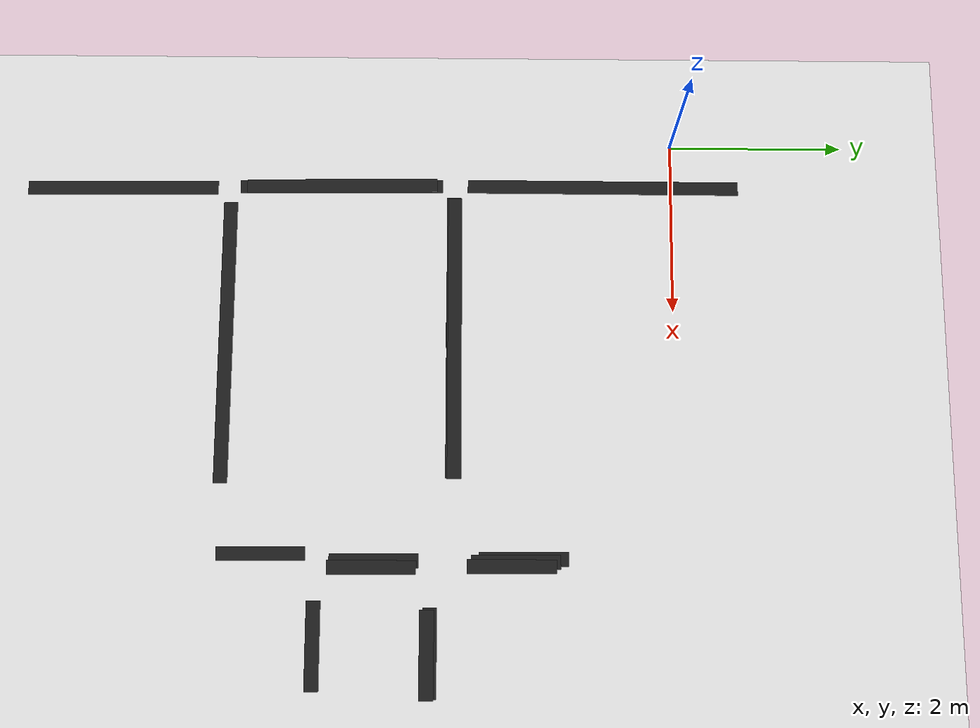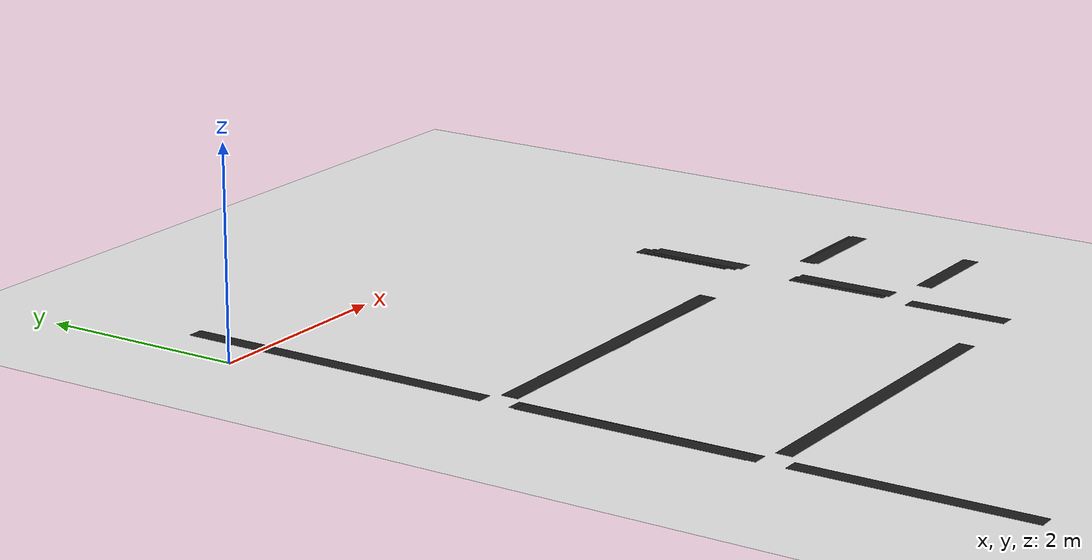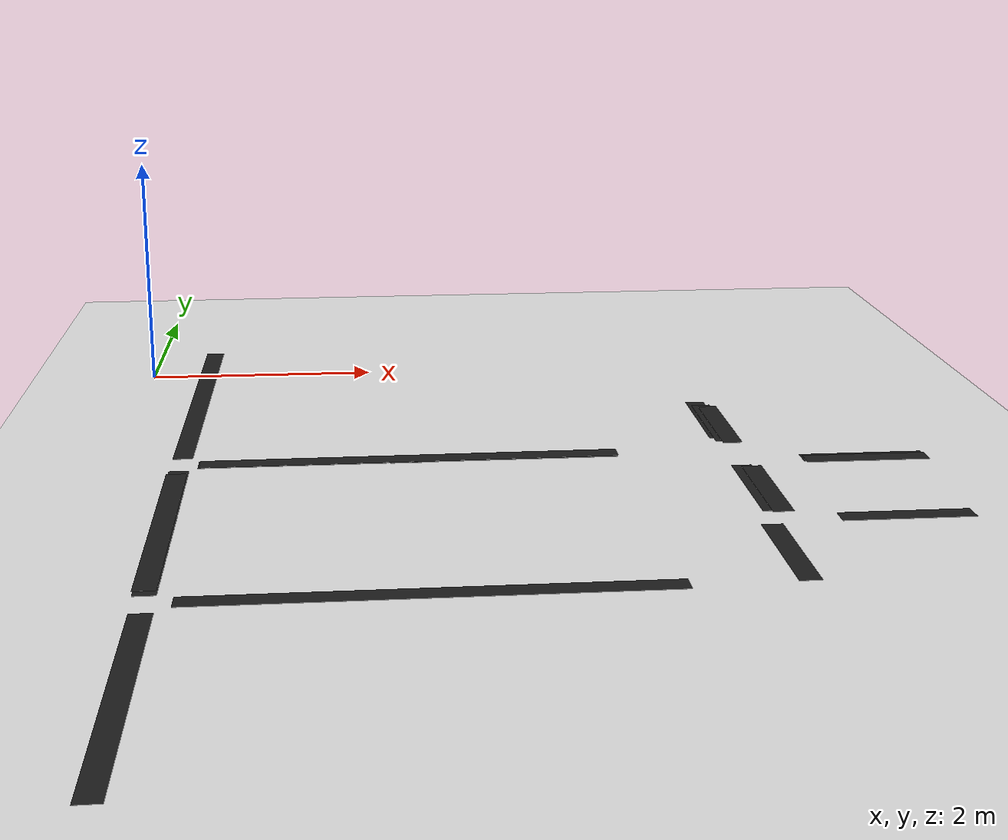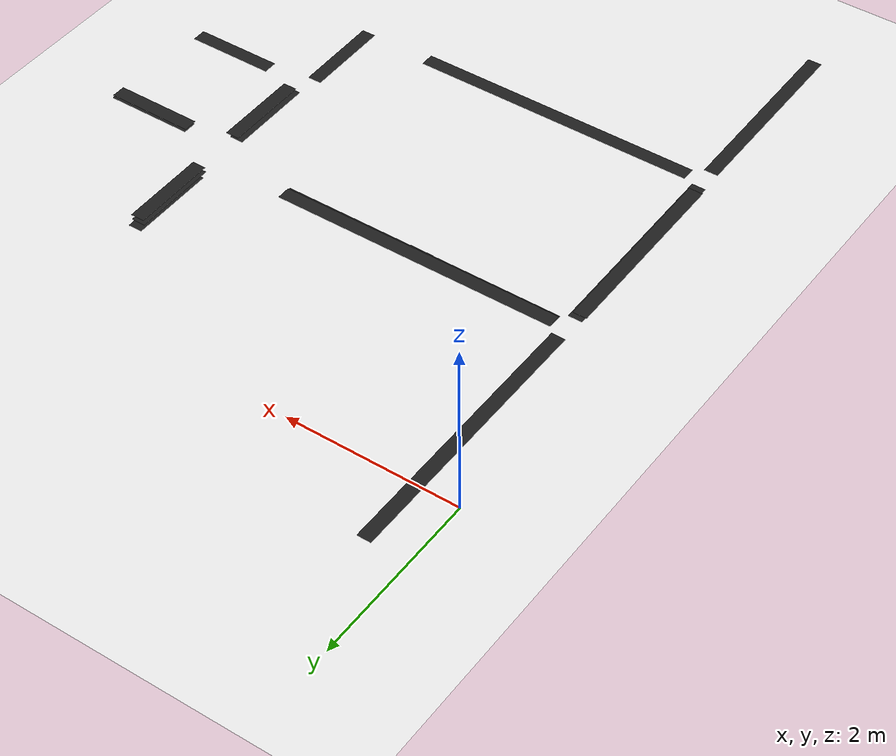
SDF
<sdf version="1.7">
 <world name="default">
  <model name="ground_plane">
   <static>1</static>
   <link name="link">
    <collision name="collision">
     <geometry><plane><normal>0 0 1</normal><size>100 100</size></plane></geometry>
     <surface>
      <contact><collide_bitmask>65535</collide_bitmask></contact>
      <friction><ode><mu>100</mu><mu2>50</mu2></ode></friction>
     </surface>
    </collision>
    <visual name="visual">
     <cast_shadows>0</cast_shadows>
     <geometry><plane><normal>0 0 1</normal><size>100 100</size></plane></geometry>
     <material>
      <script><uri>file://media/materials/scripts/gazebo.material</uri><name>Gazebo/White</name></script>
     </material>
    </visual>
   </link>
  </model>
  <model name="unit_box_clone_0_clone_clone_0_clone_clone">
   <link name="link">
    <inertial>
     <mass>1</mass>
     <inertia>
      <ixx>0.166667</ixx>
      <ixy>0</ixy>
      <ixz>0</ixz>
      <iyy>0.166667</iyy>
      <iyz>0</iyz>
      <izz>0.166667</izz>
     </inertia>
    </inertial>
    <visual name="visual">
     <geometry><box><size>0.448701 0.160776 0.000937</size></box></geometry>
     <material>
      <script><name>Gazebo/Black</name><uri>file://media/materials/scripts/gazebo.material</uri></script>
      <shader type="pixel"><normal_map>__default__</normal_map></shader>
      <ambient>0 0 0 1</ambient>
      <diffuse>0 0 0 1</diffuse>
      <specular>0.1 0.1 0.1 1</specular>
      <emissive>0 0 0 1</emissive>
     </material>
    </visual>
    <collision name="collision">
     <geometry><box><size>0.448701 0.160776 0.000937</size></box></geometry>
     <surface>
      <friction>
       <ode><mu>1</mu><mu2>1</mu2><fdir1>0 0 0</fdir1><slip1>0</slip1><slip2>0</slip2></ode>
       <torsional>
        <coefficient>1</coefficient>
        <patch_radius>0</patch_radius>
        <surface_radius>0</surface_radius>
        <use_patch_radius>1</use_patch_radius>
        <ode><slip>0</slip></ode>
       </torsional>
      </friction>
      <bounce><restitution_coefficient>0</restitution_coefficient><threshold>1e+06</threshold></bounce>
      <contact>
       <collide_without_contact>0</collide_without_contact>
       <collide_without_contact_bitmask>1</collide_without_contact_bitmask>
       <collide_bitmask>1</collide_bitmask>
       <ode>
        <soft_cfm>0</soft_cfm>
        <soft_erp>0.2</soft_erp>
        <kp>1e+13</kp>
        <kd>1</kd>
        <max_vel>0.01</max_vel>
        <min_depth>0</min_depth>
       </ode>
       <bullet>
        <split_impulse>1</split_impulse>
        <split_impulse_penetration_threshold>-0.01</split_impulse_penetration_threshold>
        <soft_cfm>0</soft_cfm>
        <soft_erp>0.2</soft_erp>
        <kp>1e+13</kp>
        <kd>1</kd>
       </bullet>
      </contact>
     </surface>
    </collision>
   </link>
   <static>0</static>
   <pose>0.50938 -3.87941 0.000454 -1e-06 -2.8e-05 -1.5617</pose>
  </model>
  <model name="unit_box_clone_0_clone_clone_0_clone_clone_clone">
   <link name="link">
    <inertial>
     <mass>1</mass>
     <inertia>
      <ixx>0.166667</ixx>
      <ixy>0</ixy>
      <ixz>0</ixz>
      <iyy>0.166667</iyy>
      <iyz>0</iyz>
      <izz>0.166667</izz>
     </inertia>
    </inertial>
    <visual name="visual">
     <geometry><box><size>1 0.160776 0.000937</size></box></geometry>
     <material>
      <script><name>Gazebo/Black</name><uri>file://media/materials/scripts/gazebo.material</uri></script>
      <shader type="pixel"><normal_map>__default__</normal_map></shader>
      <ambient>0 0 0 1</ambient>
      <diffuse>0 0 0 1</diffuse>
      <specular>0.1 0.1 0.1 1</specular>
      <emissive>0 0 0 1</emissive>
     </material>
    </visual>
    <collision name="collision">
     <geometry><box><size>1 0.160776 0.000937</size></box></geometry>
     <surface>
      <friction>
       <ode><mu>1</mu><mu2>1</mu2><fdir1>0 0 0</fdir1><slip1>0</slip1><slip2>0</slip2></ode>
       <torsional>
        <coefficient>1</coefficient>
        <patch_radius>0</patch_radius>
        <surface_radius>0</surface_radius>
        <use_patch_radius>1</use_patch_radius>
        <ode><slip>0</slip></ode>
       </torsional>
      </friction>
      <bounce><restitution_coefficient>0</restitution_coefficient><threshold>1e+06</threshold></bounce>
      <contact>
       <collide_without_contact>0</collide_without_contact>
       <collide_without_contact_bitmask>1</collide_without_contact_bitmask>
       <collide_bitmask>1</collide_bitmask>
       <ode>
        <soft_cfm>0</soft_cfm>
        <soft_erp>0.2</soft_erp>
        <kp>1e+13</kp>
        <kd>1</kd>
        <max_vel>0.01</max_vel>
        <min_depth>0</min_depth>
       </ode>
       <bullet>
        <split_impulse>1</split_impulse>
        <split_impulse_penetration_threshold>-0.01</split_impulse_penetration_threshold>
        <soft_cfm>0</soft_cfm>
        <soft_erp>0.2</soft_erp>
        <kp>1e+13</kp>
        <kd>1</kd>
       </bullet>
      </contact>
     </surface>
    </collision>
   </link>
   <static>0</static>
   <pose>4.8423 -4.65666 0.000469 0 -0 -1.56222</pose>
  </model>
  <model name="unit_box_clone_0_clone_clone_0_clone_clone_0">
   <link name="link">
    <inertial>
     <mass>1</mass>
     <inertia>
      <ixx>0.166667</ixx>
      <ixy>0</ixy>
      <ixz>0</ixz>
      <iyy>0.166667</iyy>
      <iyz>0</iyz>
      <izz>0.166667</izz>
     </inertia>
    </inertial>
    <visual name="visual">
     <geometry><box><size>1 0.160776 0.000937</size></box></geometry>
     <material>
      <script><name>Gazebo/Black</name><uri>file://media/materials/scripts/gazebo.material</uri></script>
      <shader type="pixel"><normal_map>__default__</normal_map></shader>
      <ambient>0 0 0 1</ambient>
      <diffuse>0 0 0 1</diffuse>
      <specular>0.1 0.1 0.1 1</specular>
      <emissive>0 0 0 1</emissive>
     </material>
    </visual>
    <collision name="collision">
     <geometry><box><size>1 0.160776 0.000937</size></box></geometry>
     <surface>
      <friction>
       <ode><mu>1</mu><mu2>1</mu2><fdir1>0 0 0</fdir1><slip1>0</slip1><slip2>0</slip2></ode>
       <torsional>
        <coefficient>1</coefficient>
        <patch_radius>0</patch_radius>
        <surface_radius>0</surface_radius>
        <use_patch_radius>1</use_patch_radius>
        <ode><slip>0</slip></ode>
       </torsional>
      </friction>
      <bounce><restitution_coefficient>0</restitution_coefficient><threshold>1e+06</threshold></bounce>
      <contact>
       <collide_without_contact>0</collide_without_contact>
       <collide_without_contact_bitmask>1</collide_without_contact_bitmask>
       <collide_bitmask>1</collide_bitmask>
       <ode>
        <soft_cfm>0</soft_cfm>
        <soft_erp>0.2</soft_erp>
        <kp>1e+13</kp>
        <kd>1</kd>
        <max_vel>0.01</max_vel>
        <min_depth>0</min_depth>
       </ode>
       <bullet>
        <split_impulse>1</split_impulse>
        <split_impulse_penetration_threshold>-0.01</split_impulse_penetration_threshold>
        <soft_cfm>0</soft_cfm>
        <soft_erp>0.2</soft_erp>
        <kp>1e+13</kp>
        <kd>1</kd>
       </bullet>
      </contact>
     </surface>
    </collision>
   </link>
   <static>0</static>
   <pose>5.95023 -2.79642 0.001252 5e-06 -4.2e-05 -0.001228</pose>
  </model>
  <model name="unit_box_clone_0_clone_clone_0_clone_clone_clone_0">
   <link name="link">
    <inertial>
     <mass>1</mass>
     <inertia>
      <ixx>0.166667</ixx>
      <ixy>0</ixy>
      <ixz>0</ixz>
      <iyy>0.166667</iyy>
      <iyz>0</iyz>
      <izz>0.166667</izz>
     </inertia>
    </inertial>
    <visual name="visual">
     <geometry><box><size>1 0.160776 0.000937</size></box></geometry>
     <material>
      <script><name>Gazebo/Black</name><uri>file://media/materials/scripts/gazebo.material</uri></script>
      <shader type="pixel"><normal_map>__default__</normal_map></shader>
      <ambient>0 0 0 1</ambient>
      <diffuse>0 0 0 1</diffuse>
      <specular>0.1 0.1 0.1 1</specular>
      <emissive>0 0 0 1</emissive>
     </material>
    </visual>
    <collision name="collision">
     <geometry><box><size>1 0.160776 0.000937</size></box></geometry>
     <surface>
      <friction>
       <ode><mu>1</mu><mu2>1</mu2><fdir1>0 0 0</fdir1><slip1>0</slip1><slip2>0</slip2></ode>
       <torsional>
        <coefficient>1</coefficient>
        <patch_radius>0</patch_radius>
        <surface_radius>0</surface_radius>
        <use_patch_radius>1</use_patch_radius>
        <ode><slip>0</slip></ode>
       </torsional>
      </friction>
      <bounce><restitution_coefficient>0</restitution_coefficient><threshold>1e+06</threshold></bounce>
      <contact>
       <collide_without_contact>0</collide_without_contact>
       <collide_without_contact_bitmask>1</collide_without_contact_bitmask>
       <collide_bitmask>1</collide_bitmask>
       <ode>
        <soft_cfm>0</soft_cfm>
        <soft_erp>0.2</soft_erp>
        <kp>1e+13</kp>
        <kd>1</kd>
        <max_vel>0.01</max_vel>
        <min_depth>0</min_depth>
       </ode>
       <bullet>
        <split_impulse>1</split_impulse>
        <split_impulse_penetration_threshold>-0.01</split_impulse_penetration_threshold>
        <soft_cfm>0</soft_cfm>
        <soft_erp>0.2</soft_erp>
        <kp>1e+13</kp>
        <kd>1</kd>
       </bullet>
      </contact>
     </surface>
    </collision>
   </link>
   <static>0</static>
   <pose>4.88078 -1.71752 0.000468 -0 -0 -1.56689</pose>
  </model>
  <model name="unit_box_clone_0_clone_clone_0_clone_clone_0_clone">
   <link name="link">
    <inertial>
     <mass>1</mass>
     <inertia>
      <ixx>0.166667</ixx>
      <ixy>0</ixy>
      <ixz>0</ixz>
      <iyy>0.166667</iyy>
      <iyz>0</iyz>
      <izz>0.166667</izz>
     </inertia>
    </inertial>
    <visual name="visual">
     <geometry><box><size>1 0.160776 0.000937</size></box></geometry>
     <material>
      <script><name>Gazebo/Black</name><uri>file://media/materials/scripts/gazebo.material</uri></script>
      <shader type="pixel"><normal_map>__default__</normal_map></shader>
      <ambient>0 0 0 1</ambient>
      <diffuse>0 0 0 1</diffuse>
      <specular>0.1 0.1 0.1 1</specular>
      <emissive>0 0 0 1</emissive>
     </material>
    </visual>
    <collision name="collision">
     <geometry><box><size>1 0.160776 0.000937</size></box></geometry>
     <surface>
      <friction>
       <ode><mu>1</mu><mu2>1</mu2><fdir1>0 0 0</fdir1><slip1>0</slip1><slip2>0</slip2></ode>
       <torsional>
        <coefficient>1</coefficient>
        <patch_radius>0</patch_radius>
        <surface_radius>0</surface_radius>
        <use_patch_radius>1</use_patch_radius>
        <ode><slip>0</slip></ode>
       </torsional>
      </friction>
      <bounce><restitution_coefficient>0</restitution_coefficient><threshold>1e+06</threshold></bounce>
      <contact>
       <collide_without_contact>0</collide_without_contact>
       <collide_without_contact_bitmask>1</collide_without_contact_bitmask>
       <collide_bitmask>1</collide_bitmask>
       <ode>
        <soft_cfm>0</soft_cfm>
        <soft_erp>0.2</soft_erp>
        <kp>1e+13</kp>
        <kd>1</kd>
        <max_vel>0.01</max_vel>
        <min_depth>0</min_depth>
       </ode>
       <bullet>
        <split_impulse>1</split_impulse>
        <split_impulse_penetration_threshold>-0.01</split_impulse_penetration_threshold>
        <soft_cfm>0</soft_cfm>
        <soft_erp>0.2</soft_erp>
        <kp>1e+13</kp>
        <kd>1</kd>
       </bullet>
      </contact>
     </surface>
    </collision>
   </link>
   <static>0</static>
   <pose>5.8624 -4.05427 0.000464 -0 -1e-05 0.000298</pose>
  </model>
  <model name="unit_box_clone_0_clone_clone_0_clone_clone_clone_2_clone_2">
   <link name="link">
    <inertial>
     <mass>1</mass>
     <inertia>
      <ixx>0.166667</ixx>
      <ixy>0</ixy>
      <ixz>0</ixz>
      <iyy>0.166667</iyy>
      <iyz>0</iyz>
      <izz>0.166667</izz>
     </inertia>
    </inertial>
    <visual name="visual">
     <geometry><box><size>1 0.160776 0.000937</size></box></geometry>
     <material>
      <script><name>Gazebo/Black</name><uri>file://media/materials/scripts/gazebo.material</uri></script>
      <shader type="pixel"><normal_map>__default__</normal_map></shader>
      <ambient>0 0 0 1</ambient>
      <diffuse>0 0 0 1</diffuse>
      <specular>0.1 0.1 0.1 1</specular>
      <emissive>0 0 0 1</emissive>
     </material>
    </visual>
    <collision name="collision">
     <geometry><box><size>1 0.160776 0.000937</size></box></geometry>
     <surface>
      <friction>
       <ode><mu>1</mu><mu2>1</mu2><fdir1>0 0 0</fdir1><slip1>0</slip1><slip2>0</slip2></ode>
       <torsional>
        <coefficient>1</coefficient>
        <patch_radius>0</patch_radius>
        <surface_radius>0</surface_radius>
        <use_patch_radius>1</use_patch_radius>
        <ode><slip>0</slip></ode>
       </torsional>
      </friction>
      <bounce><restitution_coefficient>0</restitution_coefficient><threshold>1e+06</threshold></bounce>
      <contact>
       <collide_without_contact>0</collide_without_contact>
       <collide_without_contact_bitmask>1</collide_without_contact_bitmask>
       <collide_bitmask>1</collide_bitmask>
       <ode>
        <soft_cfm>0</soft_cfm>
        <soft_erp>0.2</soft_erp>
        <kp>1e+13</kp>
        <kd>1</kd>
        <max_vel>0.01</max_vel>
        <min_depth>0</min_depth>
       </ode>
       <bullet>
        <split_impulse>1</split_impulse>
        <split_impulse_penetration_threshold>-0.01</split_impulse_penetration_threshold>
        <soft_cfm>0</soft_cfm>
        <soft_erp>0.2</soft_erp>
        <kp>1e+13</kp>
        <kd>1</kd>
       </bullet>
      </contact>
     </surface>
    </collision>
   </link>
   <static>0</static>
   <pose>4.91285 -3.39493 0.000455 -2e-06 -1.1e-05 -1.56388</pose>
  </model>
  <model name="unit_box_clone_0_clone_clone_0_clone_clone_clone_2_clone_3">
   <link name="link">
    <inertial>
     <mass>1</mass>
     <inertia>
      <ixx>0.166667</ixx>
      <ixy>0</ixy>
      <ixz>0</ixz>
      <iyy>0.166667</iyy>
      <iyz>0</iyz>
      <izz>0.166667</izz>
     </inertia>
    </inertial>
    <visual name="visual">
     <geometry><box><size>1 0.160776 0.000937</size></box></geometry>
     <material>
      <script><name>Gazebo/Black</name><uri>file://media/materials/scripts/gazebo.material</uri></script>
      <shader type="pixel"><normal_map>__default__</normal_map></shader>
      <ambient>0 0 0 1</ambient>
      <diffuse>0 0 0 1</diffuse>
      <specular>0.1 0.1 0.1 1</specular>
      <emissive>0 0 0 1</emissive>
     </material>
    </visual>
    <collision name="collision">
     <geometry><box><size>1 0.160776 0.000937</size></box></geometry>
     <surface>
      <friction>
       <ode><mu>1</mu><mu2>1</mu2><fdir1>0 0 0</fdir1><slip1>0</slip1><slip2>0</slip2></ode>
       <torsional>
        <coefficient>1</coefficient>
        <patch_radius>0</patch_radius>
        <surface_radius>0</surface_radius>
        <use_patch_radius>1</use_patch_radius>
        <ode><slip>0</slip></ode>
       </torsional>
      </friction>
      <bounce><restitution_coefficient>0</restitution_coefficient><threshold>1e+06</threshold></bounce>
      <contact>
       <collide_without_contact>0</collide_without_contact>
       <collide_without_contact_bitmask>1</collide_without_contact_bitmask>
       <collide_bitmask>1</collide_bitmask>
       <ode>
        <soft_cfm>0</soft_cfm>
        <soft_erp>0.2</soft_erp>
        <kp>1e+13</kp>
        <kd>1</kd>
        <max_vel>0.01</max_vel>
        <min_depth>0</min_depth>
       </ode>
       <bullet>
        <split_impulse>1</split_impulse>
        <split_impulse_penetration_threshold>-0.01</split_impulse_penetration_threshold>
        <soft_cfm>0</soft_cfm>
        <soft_erp>0.2</soft_erp>
        <kp>1e+13</kp>
        <kd>1</kd>
       </bullet>
      </contact>
     </surface>
    </collision>
   </link>
   <static>0</static>
   <pose>4.98538 -3.42058 0.001398 -0.00024 -2e-05 -1.56689</pose>
  </model>
  <model name="unit_box_clone_0_clone_clone_0_clone_clone_clone_0_clone_0">
   <link name="link">
    <inertial>
     <mass>1</mass>
     <inertia>
      <ixx>0.166667</ixx>
      <ixy>0</ixy>
      <ixz>0</ixz>
      <iyy>0.166667</iyy>
      <iyz>0</iyz>
      <izz>0.166667</izz>
     </inertia>
    </inertial>
    <visual name="visual">
     <geometry><box><size>1 0.160776 0.000937</size></box></geometry>
     <material>
      <script><name>Gazebo/Black</name><uri>file://media/materials/scripts/gazebo.material</uri></script>
      <shader type="pixel"><normal_map>__default__</normal_map></shader>
      <ambient>0 0 0 1</ambient>
      <diffuse>0 0 0 1</diffuse>
      <specular>0.1 0.1 0.1 1</specular>
      <emissive>0 0 0 1</emissive>
     </material>
    </visual>
    <collision name="collision">
     <geometry><box><size>1 0.160776 0.000937</size></box></geometry>
     <surface>
      <friction>
       <ode><mu>1</mu><mu2>1</mu2><fdir1>0 0 0</fdir1><slip1>0</slip1><slip2>0</slip2></ode>
       <torsional>
        <coefficient>1</coefficient>
        <patch_radius>0</patch_radius>
        <surface_radius>0</surface_radius>
        <use_patch_radius>1</use_patch_radius>
        <ode><slip>0</slip></ode>
       </torsional>
      </friction>
      <bounce><restitution_coefficient>0</restitution_coefficient><threshold>1e+06</threshold></bounce>
      <contact>
       <collide_without_contact>0</collide_without_contact>
       <collide_without_contact_bitmask>1</collide_without_contact_bitmask>
       <collide_bitmask>1</collide_bitmask>
       <ode>
        <soft_cfm>0</soft_cfm>
        <soft_erp>0.2</soft_erp>
        <kp>1e+13</kp>
        <kd>1</kd>
        <max_vel>0.01</max_vel>
        <min_depth>0</min_depth>
       </ode>
       <bullet>
        <split_impulse>1</split_impulse>
        <split_impulse_penetration_threshold>-0.01</split_impulse_penetration_threshold>
        <soft_cfm>0</soft_cfm>
        <soft_erp>0.2</soft_erp>
        <kp>1e+13</kp>
        <kd>1</kd>
       </bullet>
      </contact>
     </surface>
    </collision>
   </link>
   <static>0</static>
   <pose>4.91453 -1.80693 0.001371 -8e-06 -8.6e-05 -1.5648</pose>
  </model>
  <model name="unit_box_clone_0_clone_clone_0_clone_clone_clone_0_clone_1">
   <link name="link">
    <inertial>
     <mass>1</mass>
     <inertia>
      <ixx>0.166667</ixx>
      <ixy>0</ixy>
      <ixz>0</ixz>
      <iyy>0.166667</iyy>
      <iyz>0</iyz>
      <izz>0.166667</izz>
     </inertia>
    </inertial>
    <visual name="visual">
     <geometry><box><size>1 0.160776 0.000937</size></box></geometry>
     <material>
      <script><name>Gazebo/Black</name><uri>file://media/materials/scripts/gazebo.material</uri></script>
      <shader type="pixel"><normal_map>__default__</normal_map></shader>
      <ambient>0 0 0 1</ambient>
      <diffuse>0 0 0 1</diffuse>
      <specular>0.1 0.1 0.1 1</specular>
      <emissive>0 0 0 1</emissive>
     </material>
    </visual>
    <collision name="collision">
     <geometry><box><size>1 0.160776 0.000937</size></box></geometry>
     <surface>
      <friction>
       <ode><mu>1</mu><mu2>1</mu2><fdir1>0 0 0</fdir1><slip1>0</slip1><slip2>0</slip2></ode>
       <torsional>
        <coefficient>1</coefficient>
        <patch_radius>0</patch_radius>
        <surface_radius>0</surface_radius>
        <use_patch_radius>1</use_patch_radius>
        <ode><slip>0</slip></ode>
       </torsional>
      </friction>
      <bounce><restitution_coefficient>0</restitution_coefficient><threshold>1e+06</threshold></bounce>
      <contact>
       <collide_without_contact>0</collide_without_contact>
       <collide_without_contact_bitmask>1</collide_without_contact_bitmask>
       <collide_bitmask>1</collide_bitmask>
       <ode>
        <soft_cfm>0</soft_cfm>
        <soft_erp>0.2</soft_erp>
        <kp>1e+13</kp>
        <kd>1</kd>
        <max_vel>0.01</max_vel>
        <min_depth>0</min_depth>
       </ode>
       <bullet>
        <split_impulse>1</split_impulse>
        <split_impulse_penetration_threshold>-0.01</split_impulse_penetration_threshold>
        <soft_cfm>0</soft_cfm>
        <soft_erp>0.2</soft_erp>
        <kp>1e+13</kp>
        <kd>1</kd>
       </bullet>
      </contact>
     </surface>
    </collision>
   </link>
   <static>0</static>
   <pose>4.96504 -1.85196 0.00229 -1.5e-05 -4.4e-05 -1.56493</pose>
  </model>
  <model name="unit_box_clone_0_clone_clone_0_clone_clone_0_clone_1">
   <link name="link">
    <inertial>
     <mass>1</mass>
     <inertia>
      <ixx>0.166667</ixx>
      <ixy>0</ixy>
      <ixz>0</ixz>
      <iyy>0.166667</iyy>
      <iyz>0</iyz>
      <izz>0.166667</izz>
     </inertia>
    </inertial>
    <visual name="visual">
     <geometry><box><size>1 0.160776 0.000937</size></box></geometry>
     <material>
      <script><name>Gazebo/Black</name><uri>file://media/materials/scripts/gazebo.material</uri></script>
      <shader type="pixel"><normal_map>__default__</normal_map></shader>
      <ambient>0 0 0 1</ambient>
      <diffuse>0 0 0 1</diffuse>
      <specular>0.1 0.1 0.1 1</specular>
      <emissive>0 0 0 1</emissive>
     </material>
    </visual>
    <collision name="collision">
     <geometry><box><size>1 0.160776 0.000937</size></box></geometry>
     <surface>
      <friction>
       <ode><mu>1</mu><mu2>1</mu2><fdir1>0 0 0</fdir1><slip1>0</slip1><slip2>0</slip2></ode>
       <torsional>
        <coefficient>1</coefficient>
        <patch_radius>0</patch_radius>
        <surface_radius>0</surface_radius>
        <use_patch_radius>1</use_patch_radius>
        <ode><slip>0</slip></ode>
       </torsional>
      </friction>
      <bounce><restitution_coefficient>0</restitution_coefficient><threshold>1e+06</threshold></bounce>
      <contact>
       <collide_without_contact>0</collide_without_contact>
       <collide_without_contact_bitmask>1</collide_without_contact_bitmask>
       <collide_bitmask>1</collide_bitmask>
       <ode>
        <soft_cfm>0</soft_cfm>
        <soft_erp>0.2</soft_erp>
        <kp>1e+13</kp>
        <kd>1</kd>
        <max_vel>0.01</max_vel>
        <min_depth>0</min_depth>
       </ode>
       <bullet>
        <split_impulse>1</split_impulse>
        <split_impulse_penetration_threshold>-0.01</split_impulse_penetration_threshold>
        <soft_cfm>0</soft_cfm>
        <soft_erp>0.2</soft_erp>
        <kp>1e+13</kp>
        <kd>1</kd>
       </bullet>
      </contact>
     </surface>
    </collision>
   </link>
   <static>0</static>
   <pose>5.93137 -2.76298 0.000402 1e-06 0.000134 0.000213</pose>
  </model>
  <model name="unit_box_clone_0_clone_clone_clone_clone_clone_clone_clone_0_clone_clone_0">
   <link name="link">
    <inertial>
     <mass>1</mass>
     <inertia>
      <ixx>0.166667</ixx>
      <ixy>0</ixy>
      <ixz>0</ixz>
      <iyy>0.166667</iyy>
      <iyz>0</iyz>
      <izz>0.166667</izz>
     </inertia>
    </inertial>
    <visual name="visual">
     <geometry><box><size>3.16167 0.161571 0.000937</size></box></geometry>
     <material>
      <script><name>Gazebo/Black</name><uri>file://media/materials/scripts/gazebo.material</uri></script>
      <shader type="pixel"><normal_map>__default__</normal_map></shader>
      <ambient>0 0 0 1</ambient>
      <diffuse>0 0 0 1</diffuse>
      <specular>0.1 0.1 0.1 1</specular>
      <emissive>0 0 0 1</emissive>
     </material>
    </visual>
    <collision name="collision">
     <geometry><box><size>3.16167 0.161571 0.000937</size></box></geometry>
     <surface>
      <friction>
       <ode><mu>1</mu><mu2>1</mu2><fdir1>0 0 0</fdir1><slip1>0</slip1><slip2>0</slip2></ode>
       <torsional>
        <coefficient>1</coefficient>
        <patch_radius>0</patch_radius>
        <surface_radius>0</surface_radius>
        <use_patch_radius>1</use_patch_radius>
        <ode><slip>0</slip></ode>
       </torsional>
      </friction>
      <bounce><restitution_coefficient>0</restitution_coefficient><threshold>1e+06</threshold></bounce>
      <contact>
       <collide_without_contact>0</collide_without_contact>
       <collide_without_contact_bitmask>1</collide_without_contact_bitmask>
       <collide_bitmask>1</collide_bitmask>
       <ode>
        <soft_cfm>0</soft_cfm>
        <soft_erp>0.2</soft_erp>
        <kp>1e+13</kp>
        <kd>1</kd>
        <max_vel>0.01</max_vel>
        <min_depth>0</min_depth>
       </ode>
       <bullet>
        <split_impulse>1</split_impulse>
        <split_impulse_penetration_threshold>-0.01</split_impulse_penetration_threshold>
        <soft_cfm>0</soft_cfm>
        <soft_erp>0.2</soft_erp>
        <kp>1e+13</kp>
        <kd>1</kd>
       </bullet>
      </contact>
     </surface>
    </collision>
   </link>
   <static>0</static>
   <pose>0.497635 -0.788003 -4.1e-05 -1.1e-05 -0.000323 -1.57206</pose>
  </model>
  <model name="unit_box_clone_0_clone_clone_0_clone_clone_4">
   <link name="link">
    <inertial>
     <mass>1</mass>
     <inertia>
      <ixx>0.166667</ixx>
      <ixy>0</ixy>
      <ixz>0</ixz>
      <iyy>0.166667</iyy>
      <iyz>0</iyz>
      <izz>0.166667</izz>
     </inertia>
    </inertial>
    <visual name="visual">
     <geometry><box><size>0.299882 0.160776 0.000937</size></box></geometry>
     <material>
      <script><name>Gazebo/Black</name><uri>file://media/materials/scripts/gazebo.material</uri></script>
      <shader type="pixel"><normal_map>__default__</normal_map></shader>
      <ambient>0 0 0 1</ambient>
      <diffuse>0 0 0 1</diffuse>
      <specular>0.1 0.1 0.1 1</specular>
      <emissive>0 0 0 1</emissive>
     </material>
    </visual>
    <collision name="collision">
     <geometry><box><size>0.299882 0.160776 0.000937</size></box></geometry>
     <surface>
      <friction>
       <ode><mu>1</mu><mu2>1</mu2><fdir1>0 0 0</fdir1><slip1>0</slip1><slip2>0</slip2></ode>
       <torsional>
        <coefficient>1</coefficient>
        <patch_radius>0</patch_radius>
        <surface_radius>0</surface_radius>
        <use_patch_radius>1</use_patch_radius>
        <ode><slip>0</slip></ode>
       </torsional>
      </friction>
      <bounce><restitution_coefficient>0</restitution_coefficient><threshold>1e+06</threshold></bounce>
      <contact>
       <collide_without_contact>0</collide_without_contact>
       <collide_without_contact_bitmask>1</collide_without_contact_bitmask>
       <collide_bitmask>1</collide_bitmask>
       <ode>
        <soft_cfm>0</soft_cfm>
        <soft_erp>0.2</soft_erp>
        <kp>1e+13</kp>
        <kd>1</kd>
        <max_vel>0.01</max_vel>
        <min_depth>0</min_depth>
       </ode>
       <bullet>
        <split_impulse>1</split_impulse>
        <split_impulse_penetration_threshold>-0.01</split_impulse_penetration_threshold>
        <soft_cfm>0</soft_cfm>
        <soft_erp>0.2</soft_erp>
        <kp>1e+13</kp>
        <kd>1</kd>
       </bullet>
      </contact>
     </surface>
    </collision>
   </link>
   <static>0</static>
   <pose>2.29995 -2.52991 0.000356 -2e-06 -0.000225 -0.001641</pose>
  </model>
  <model name="unit_box_clone_0_clone_clone_0_clone_clone_4_clone_2">
   <link name="link">
    <inertial>
     <mass>1</mass>
     <inertia>
      <ixx>0.166667</ixx>
      <ixy>0</ixy>
      <ixz>0</ixz>
      <iyy>0.166667</iyy>
      <iyz>0</iyz>
      <izz>0.166667</izz>
     </inertia>
    </inertial>
    <visual name="visual">
     <geometry><box><size>3.33465 0.160776 0.000937</size></box></geometry>
     <material>
      <script><name>Gazebo/Black</name><uri>file://media/materials/scripts/gazebo.material</uri></script>
      <shader type="pixel"><normal_map>__default__</normal_map></shader>
      <ambient>0 0 0 1</ambient>
      <diffuse>0 0 0 1</diffuse>
      <specular>0.1 0.1 0.1 1</specular>
      <emissive>0 0 0 1</emissive>
     </material>
    </visual>
    <collision name="collision">
     <geometry><box><size>3.33465 0.160776 0.000937</size></box></geometry>
     <surface>
      <friction>
       <ode><mu>1</mu><mu2>1</mu2><fdir1>0 0 0</fdir1><slip1>0</slip1><slip2>0</slip2></ode>
       <torsional>
        <coefficient>1</coefficient>
        <patch_radius>0</patch_radius>
        <surface_radius>0</surface_radius>
        <use_patch_radius>1</use_patch_radius>
        <ode><slip>0</slip></ode>
       </torsional>
      </friction>
      <bounce><restitution_coefficient>0</restitution_coefficient><threshold>1e+06</threshold></bounce>
      <contact>
       <collide_without_contact>0</collide_without_contact>
       <collide_without_contact_bitmask>1</collide_without_contact_bitmask>
       <collide_bitmask>1</collide_bitmask>
       <ode>
        <soft_cfm>0</soft_cfm>
        <soft_erp>0.2</soft_erp>
        <kp>1e+13</kp>
        <kd>1</kd>
        <max_vel>0.01</max_vel>
        <min_depth>0</min_depth>
       </ode>
       <bullet>
        <split_impulse>1</split_impulse>
        <split_impulse_penetration_threshold>-0.01</split_impulse_penetration_threshold>
        <soft_cfm>0</soft_cfm>
        <soft_erp>0.2</soft_erp>
        <kp>1e+13</kp>
        <kd>1</kd>
       </bullet>
      </contact>
     </surface>
    </collision>
   </link>
   <static>0</static>
   <pose>2.30242 -2.52584 0.001219 -5e-06 -7.4e-05 0.001278</pose>
  </model>
  <model name="unit_box_clone_0_clone_clone_0_clone_clone_4_clone_3">
   <link name="link">
    <inertial>
     <mass>1</mass>
     <inertia>
      <ixx>0.166667</ixx>
      <ixy>0</ixy>
      <ixz>0</ixz>
      <iyy>0.166667</iyy>
      <iyz>0</iyz>
      <izz>0.166667</izz>
     </inertia>
    </inertial>
    <visual name="visual">
     <geometry><box><size>3.33465 0.160776 0.000937</size></box></geometry>
     <material>
      <script><name>Gazebo/Black</name><uri>file://media/materials/scripts/gazebo.material</uri></script>
      <shader type="pixel"><normal_map>__default__</normal_map></shader>
      <ambient>0 0 0 1</ambient>
      <diffuse>0 0 0 1</diffuse>
      <specular>0.1 0.1 0.1 1</specular>
      <emissive>0 0 0 1</emissive>
     </material>
    </visual>
    <collision name="collision">
     <geometry><box><size>3.33465 0.160776 0.000937</size></box></geometry>
     <surface>
      <friction>
       <ode><mu>1</mu><mu2>1</mu2><fdir1>0 0 0</fdir1><slip1>0</slip1><slip2>0</slip2></ode>
       <torsional>
        <coefficient>1</coefficient>
        <patch_radius>0</patch_radius>
        <surface_radius>0</surface_radius>
        <use_patch_radius>1</use_patch_radius>
        <ode><slip>0</slip></ode>
       </torsional>
      </friction>
      <bounce><restitution_coefficient>0</restitution_coefficient><threshold>1e+06</threshold></bounce>
      <contact>
       <collide_without_contact>0</collide_without_contact>
       <collide_without_contact_bitmask>1</collide_without_contact_bitmask>
       <collide_bitmask>1</collide_bitmask>
       <ode>
        <soft_cfm>0</soft_cfm>
        <soft_erp>0.2</soft_erp>
        <kp>1e+13</kp>
        <kd>1</kd>
        <max_vel>0.01</max_vel>
        <min_depth>0</min_depth>
       </ode>
       <bullet>
        <split_impulse>1</split_impulse>
        <split_impulse_penetration_threshold>-0.01</split_impulse_penetration_threshold>
        <soft_cfm>0</soft_cfm>
        <soft_erp>0.2</soft_erp>
        <kp>1e+13</kp>
        <kd>1</kd>
       </bullet>
      </contact>
     </surface>
    </collision>
   </link>
   <static>0</static>
   <pose>2.31138 -2.51132 0.002049 -3.3e-05 -0.000344 0.003071</pose>
  </model>
  <model name="unit_box_clone_0_clone_clone_0_clone_clone_clone_3">
   <link name="link">
    <inertial>
     <mass>1</mass>
     <inertia>
      <ixx>0.166667</ixx>
      <ixy>0</ixy>
      <ixz>0</ixz>
      <iyy>0.166667</iyy>
      <iyz>0</iyz>
      <izz>0.166667</izz>
     </inertia>
    </inertial>
    <visual name="visual">
     <geometry><box><size>2.22866 0.160776 0.000937</size></box></geometry>
     <material>
      <script><name>Gazebo/Black</name><uri>file://media/materials/scripts/gazebo.material</uri></script>
      <shader type="pixel"><normal_map>__default__</normal_map></shader>
      <ambient>0 0 0 1</ambient>
      <diffuse>0 0 0 1</diffuse>
      <specular>0.1 0.1 0.1 1</specular>
      <emissive>0 0 0 1</emissive>
     </material>
    </visual>
    <collision name="collision">
     <geometry><box><size>2.22866 0.160776 0.000937</size></box></geometry>
     <surface>
      <friction>
       <ode><mu>1</mu><mu2>1</mu2><fdir1>0 0 0</fdir1><slip1>0</slip1><slip2>0</slip2></ode>
       <torsional>
        <coefficient>1</coefficient>
        <patch_radius>0</patch_radius>
        <surface_radius>0</surface_radius>
        <use_patch_radius>1</use_patch_radius>
        <ode><slip>0</slip></ode>
       </torsional>
      </friction>
      <bounce><restitution_coefficient>0</restitution_coefficient><threshold>1e+06</threshold></bounce>
      <contact>
       <collide_without_contact>0</collide_without_contact>
       <collide_without_contact_bitmask>1</collide_without_contact_bitmask>
       <collide_bitmask>1</collide_bitmask>
       <ode>
        <soft_cfm>0</soft_cfm>
        <soft_erp>0.2</soft_erp>
        <kp>1e+13</kp>
        <kd>1</kd>
        <max_vel>0.01</max_vel>
        <min_depth>0</min_depth>
       </ode>
       <bullet>
        <split_impulse>1</split_impulse>
        <split_impulse_penetration_threshold>-0.01</split_impulse_penetration_threshold>
        <soft_cfm>0</soft_cfm>
        <soft_erp>0.2</soft_erp>
        <kp>1e+13</kp>
        <kd>1</kd>
       </bullet>
      </contact>
     </surface>
    </collision>
   </link>
   <static>0</static>
   <pose>0.509299 -3.91648 0.001332 -2e-06 8.4e-05 -1.56092</pose>
  </model>
  <model name="unit_box_clone_0_clone_clone_0_clone_clone_clone_4">
   <link name="link">
    <inertial>
     <mass>1</mass>
     <inertia>
      <ixx>0.166667</ixx>
      <ixy>0</ixy>
      <ixz>0</ixz>
      <iyy>0.166667</iyy>
      <iyz>0</iyz>
      <izz>0.166667</izz>
     </inertia>
    </inertial>
    <visual name="visual">
     <geometry><box><size>2.22866 0.160776 0.000937</size></box></geometry>
     <material>
      <script><name>Gazebo/Black</name><uri>file://media/materials/scripts/gazebo.material</uri></script>
      <shader type="pixel"><normal_map>__default__</normal_map></shader>
      <ambient>0 0 0 1</ambient>
      <diffuse>0 0 0 1</diffuse>
      <specular>0.1 0.1 0.1 1</specular>
      <emissive>0 0 0 1</emissive>
     </material>
    </visual>
    <collision name="collision">
     <geometry><box><size>2.22866 0.160776 0.000937</size></box></geometry>
     <surface>
      <friction>
       <ode><mu>1</mu><mu2>1</mu2><fdir1>0 0 0</fdir1><slip1>0</slip1><slip2>0</slip2></ode>
       <torsional>
        <coefficient>1</coefficient>
        <patch_radius>0</patch_radius>
        <surface_radius>0</surface_radius>
        <use_patch_radius>1</use_patch_radius>
        <ode><slip>0</slip></ode>
       </torsional>
      </friction>
      <bounce><restitution_coefficient>0</restitution_coefficient><threshold>1e+06</threshold></bounce>
      <contact>
       <collide_without_contact>0</collide_without_contact>
       <collide_without_contact_bitmask>1</collide_without_contact_bitmask>
       <collide_bitmask>1</collide_bitmask>
       <ode>
        <soft_cfm>0</soft_cfm>
        <soft_erp>0.2</soft_erp>
        <kp>1e+13</kp>
        <kd>1</kd>
        <max_vel>0.01</max_vel>
        <min_depth>0</min_depth>
       </ode>
       <bullet>
        <split_impulse>1</split_impulse>
        <split_impulse_penetration_threshold>-0.01</split_impulse_penetration_threshold>
        <soft_cfm>0</soft_cfm>
        <soft_erp>0.2</soft_erp>
        <kp>1e+13</kp>
        <kd>1</kd>
       </bullet>
      </contact>
     </surface>
    </collision>
   </link>
   <static>0</static>
   <pose>0.496867 -3.84097 0.003177 4e-06 0.000122 -1.5601</pose>
  </model>
  <model name="unit_box_clone_0_clone_clone_0_clone_clone_clone_5">
   <link name="link">
    <inertial>
     <mass>1</mass>
     <inertia>
      <ixx>0.166667</ixx>
      <ixy>0</ixy>
      <ixz>0</ixz>
      <iyy>0.166667</iyy>
      <iyz>0</iyz>
      <izz>0.166667</izz>
     </inertia>
    </inertial>
    <visual name="visual">
     <geometry><box><size>2.22866 0.160776 0.000937</size></box></geometry>
     <material>
      <script><name>Gazebo/Black</name><uri>file://media/materials/scripts/gazebo.material</uri></script>
      <shader type="pixel"><normal_map>__default__</normal_map></shader>
      <ambient>0 0 0 1</ambient>
      <diffuse>0 0 0 1</diffuse>
      <specular>0.1 0.1 0.1 1</specular>
      <emissive>0 0 0 1</emissive>
     </material>
    </visual>
    <collision name="collision">
     <geometry><box><size>2.22866 0.160776 0.000937</size></box></geometry>
     <surface>
      <friction>
       <ode><mu>1</mu><mu2>1</mu2><fdir1>0 0 0</fdir1><slip1>0</slip1><slip2>0</slip2></ode>
       <torsional>
        <coefficient>1</coefficient>
        <patch_radius>0</patch_radius>
        <surface_radius>0</surface_radius>
        <use_patch_radius>1</use_patch_radius>
        <ode><slip>0</slip></ode>
       </torsional>
      </friction>
      <bounce><restitution_coefficient>0</restitution_coefficient><threshold>1e+06</threshold></bounce>
      <contact>
       <collide_without_contact>0</collide_without_contact>
       <collide_without_contact_bitmask>1</collide_without_contact_bitmask>
       <collide_bitmask>1</collide_bitmask>
       <ode>
        <soft_cfm>0</soft_cfm>
        <soft_erp>0.2</soft_erp>
        <kp>1e+13</kp>
        <kd>1</kd>
        <max_vel>0.01</max_vel>
        <min_depth>0</min_depth>
       </ode>
       <bullet>
        <split_impulse>1</split_impulse>
        <split_impulse_penetration_threshold>-0.01</split_impulse_penetration_threshold>
        <soft_cfm>0</soft_cfm>
        <soft_erp>0.2</soft_erp>
        <kp>1e+13</kp>
        <kd>1</kd>
       </bullet>
      </contact>
     </surface>
    </collision>
   </link>
   <static>0</static>
   <pose>0.507334 -3.77626 0.002281 -3e-06 8.4e-05 -1.56123</pose>
  </model>
  <model name="unit_box_clone_0_clone_clone_0_clone_clone_clone_4_clone_0_clone_2">
   <link name="link">
    <inertial>
     <mass>1</mass>
     <inertia>
      <ixx>0.166667</ixx>
      <ixy>0</ixy>
      <ixz>0</ixz>
      <iyy>0.166667</iyy>
      <iyz>0</iyz>
      <izz>0.166667</izz>
     </inertia>
    </inertial>
    <visual name="visual">
     <geometry><box><size>2.22866 0.160776 0.000937</size></box></geometry>
     <material>
      <script><name>Gazebo/Black</name><uri>file://media/materials/scripts/gazebo.material</uri></script>
      <shader type="pixel"><normal_map>__default__</normal_map></shader>
      <ambient>0 0 0 1</ambient>
      <diffuse>0 0 0 1</diffuse>
      <specular>0.1 0.1 0.1 1</specular>
      <emissive>0 0 0 1</emissive>
     </material>
    </visual>
    <collision name="collision">
     <geometry><box><size>2.22866 0.160776 0.000937</size></box></geometry>
     <surface>
      <friction>
       <ode><mu>1</mu><mu2>1</mu2><fdir1>0 0 0</fdir1><slip1>0</slip1><slip2>0</slip2></ode>
       <torsional>
        <coefficient>1</coefficient>
        <patch_radius>0</patch_radius>
        <surface_radius>0</surface_radius>
        <use_patch_radius>1</use_patch_radius>
        <ode><slip>0</slip></ode>
       </torsional>
      </friction>
      <bounce><restitution_coefficient>0</restitution_coefficient><threshold>1e+06</threshold></bounce>
      <contact>
       <collide_without_contact>0</collide_without_contact>
       <collide_without_contact_bitmask>1</collide_without_contact_bitmask>
       <collide_bitmask>1</collide_bitmask>
       <ode>
        <soft_cfm>0</soft_cfm>
        <soft_erp>0.2</soft_erp>
        <kp>1e+13</kp>
        <kd>1</kd>
        <max_vel>0.01</max_vel>
        <min_depth>0</min_depth>
       </ode>
       <bullet>
        <split_impulse>1</split_impulse>
        <split_impulse_penetration_threshold>-0.01</split_impulse_penetration_threshold>
        <soft_cfm>0</soft_cfm>
        <soft_erp>0.2</soft_erp>
        <kp>1e+13</kp>
        <kd>1</kd>
       </bullet>
      </contact>
     </surface>
    </collision>
   </link>
   <static>0</static>
   <pose>0.543548 -6.40719 0.000352 -2e-06 -0.000105 -1.5618</pose>
  </model>
  <model name="unit_box_clone_0_clone_clone_0_clone_clone_4_clone_2_clone">
   <link name="link">
    <inertial>
     <mass>1</mass>
     <inertia>
      <ixx>0.166667</ixx>
      <ixy>0</ixy>
      <ixz>0</ixz>
      <iyy>0.166667</iyy>
      <iyz>0</iyz>
      <izz>0.166667</izz>
     </inertia>
    </inertial>
    <visual name="visual">
     <geometry><box><size>3.33465 0.160776 0.000937</size></box></geometry>
     <material>
      <script><name>Gazebo/Black</name><uri>file://media/materials/scripts/gazebo.material</uri></script>
      <shader type="pixel"><normal_map>__default__</normal_map></shader>
      <ambient>0 0 0 1</ambient>
      <diffuse>0 0 0 1</diffuse>
      <specular>0.1 0.1 0.1 1</specular>
      <emissive>0 0 0 1</emissive>
     </material>
    </visual>
    <collision name="collision">
     <geometry><box><size>3.33465 0.160776 0.000937</size></box></geometry>
     <surface>
      <friction>
       <ode><mu>1</mu><mu2>1</mu2><fdir1>0 0 0</fdir1><slip1>0</slip1><slip2>0</slip2></ode>
       <torsional>
        <coefficient>1</coefficient>
        <patch_radius>0</patch_radius>
        <surface_radius>0</surface_radius>
        <use_patch_radius>1</use_patch_radius>
        <ode><slip>0</slip></ode>
       </torsional>
      </friction>
      <bounce><restitution_coefficient>0</restitution_coefficient><threshold>1e+06</threshold></bounce>
      <contact>
       <collide_without_contact>0</collide_without_contact>
       <collide_without_contact_bitmask>1</collide_without_contact_bitmask>
       <collide_bitmask>1</collide_bitmask>
       <ode>
        <soft_cfm>0</soft_cfm>
        <soft_erp>0.2</soft_erp>
        <kp>1e+13</kp>
        <kd>1</kd>
        <max_vel>0.01</max_vel>
        <min_depth>0</min_depth>
       </ode>
       <bullet>
        <split_impulse>1</split_impulse>
        <split_impulse_penetration_threshold>-0.01</split_impulse_penetration_threshold>
        <soft_cfm>0</soft_cfm>
        <soft_erp>0.2</soft_erp>
        <kp>1e+13</kp>
        <kd>1</kd>
       </bullet>
      </contact>
     </surface>
    </collision>
   </link>
   <static>0</static>
   <pose>2.37917 -5.13919 0.000468 -8e-06 -0 -0.000523</pose>
  </model>
 </world>
</sdf>
